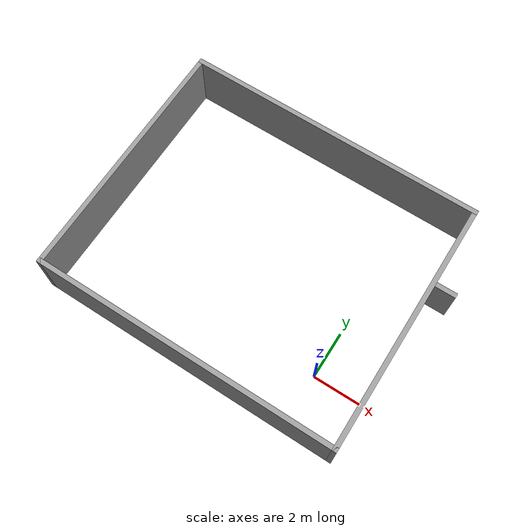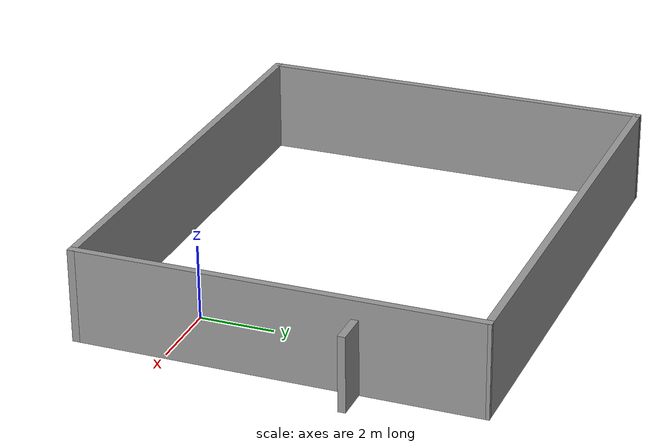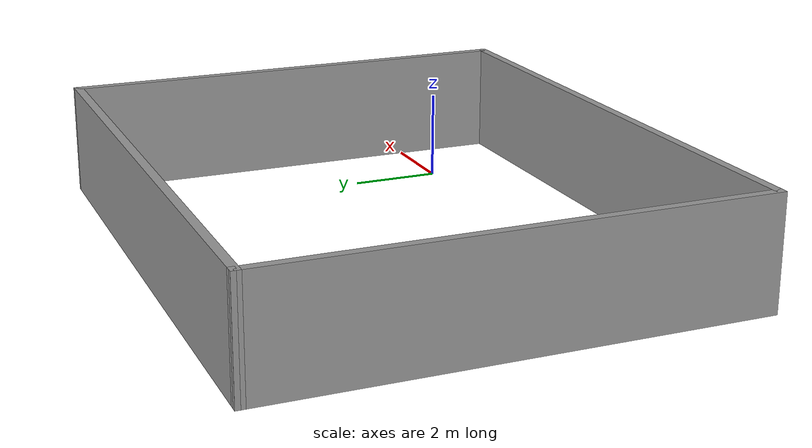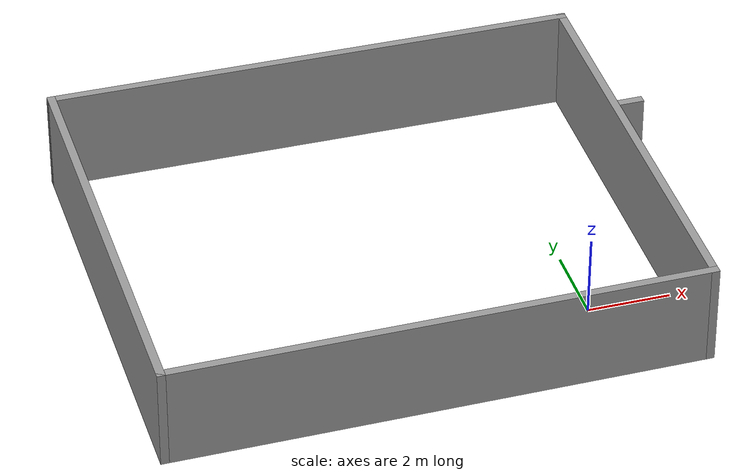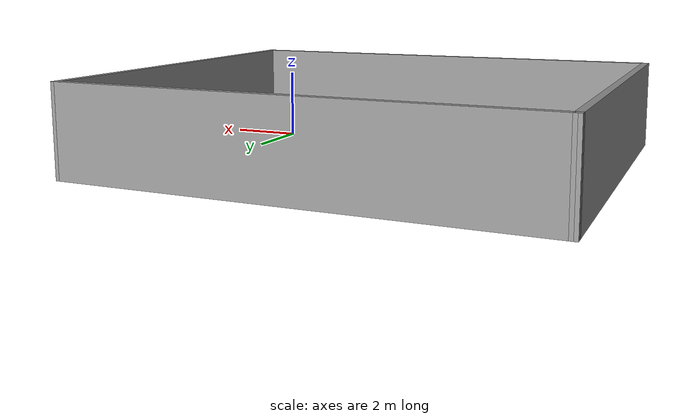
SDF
<?xml version='1.0'?>
<sdf version='1.4'>
  <model name='BuildingDefaultName'>
    <link name='Door_1'>
      <collision name='Door_1_Collision'>
        <geometry>
          <box>
            <size>1 0.2 2</size>
          </box>
        </geometry>
        <pose>0 0 1 0 -0 0</pose>
      </collision>
      <visual name='Door_1_Visual'>
        <pose>0 0 1 0 -0 0</pose>
        <geometry>
          <box>
            <size>1 0.2 2</size>
          </box>
        </geometry>
        <material>
          <script>
            <uri>file://media/materials/scripts/gazebo.material</uri>
            <name>Gazebo/Grey</name>
          </script>
        </material>
      </visual>
      <velocity_decay>
        <linear>0</linear>
        <angular>0</angular>
      </velocity_decay>
      <pose>2.5544 4.99374 0 0 -0 0</pose>
    </link>
    <link name='Wall_5'>
      <collision name='Wall_5_Collision'>
        <geometry>
          <box>
            <size>10.7536 0.2 2.5</size>
          </box>
        </geometry>
        <pose>0 0 1.25 0 -0 0</pose>
      </collision>
      <visual name='Wall_5_Visual'>
        <pose>0 0 1.25 0 -0 0</pose>
        <geometry>
          <box>
            <size>10.7536 0.2 2.5</size>
          </box>
        </geometry>
        <material>
          <script>
            <uri>file://media/materials/scripts/gazebo.material</uri>
            <name>Gazebo/Grey</name>
          </script>
        </material>
      </visual>
      <velocity_decay>
        <linear>0</linear>
        <angular>0</angular>
      </velocity_decay>
      <pose>2.0849 2.93538 0 0 0 -1.5708</pose>
    </link>
    <link name='Wall_6'>
      <collision name='Wall_6_Collision'>
        <geometry>
          <box>
            <size>12.9754 0.2 2.5</size>
          </box>
        </geometry>
        <pose>0 0 1.25 0 -0 0</pose>
      </collision>
      <visual name='Wall_6_Visual'>
        <pose>0 0 1.25 0 -0 0</pose>
        <geometry>
          <box>
            <size>12.9754 0.2 2.5</size>
          </box>
        </geometry>
        <material>
          <script>
            <uri>file://media/materials/scripts/gazebo.material</uri>
            <name>Gazebo/Grey</name>
          </script>
        </material>
      </visual>
      <velocity_decay>
        <linear>0</linear>
        <angular>0</angular>
      </velocity_decay>
      <pose>-4.30277 -2.3414 0 0 -0 3.14159</pose>
    </link>
    <link name='Wall_7'>
      <collision name='Wall_7_Collision'>
        <geometry>
          <box>
            <size>10.8726 0.2 2.5</size>
          </box>
        </geometry>
        <pose>0 0 1.25 0 -0 0</pose>
      </collision>
      <visual name='Wall_7_Visual'>
        <pose>0 0 1.25 0 -0 0</pose>
        <geometry>
          <box>
            <size>10.8726 0.2 2.5</size>
          </box>
        </geometry>
        <material>
          <script>
            <uri>file://media/materials/scripts/gazebo.material</uri>
            <name>Gazebo/Grey</name>
          </script>
        </material>
      </visual>
      <velocity_decay>
        <linear>0</linear>
        <angular>0</angular>
      </velocity_decay>
      <pose>-10.6905 2.99489 0 0 -0 1.5708</pose>
    </link>
    <link name='Wall_8'>
      <collision name='Wall_8_Collision'>
        <geometry>
          <box>
            <size>12.9759 0.2 2.5</size>
          </box>
        </geometry>
        <pose>0 0 1.25 0 -0 0</pose>
      </collision>
      <visual name='Wall_8_Visual'>
        <pose>0 0 1.25 0 -0 0</pose>
        <geometry>
          <box>
            <size>12.9759 0.2 2.5</size>
          </box>
        </geometry>
        <material>
          <script>
            <uri>file://media/materials/scripts/gazebo.material</uri>
            <name>Gazebo/Grey</name>
          </script>
        </material>
      </visual>
      <velocity_decay>
        <linear>0</linear>
        <angular>0</angular>
      </velocity_decay>
      <pose>-4.30277 8.27166 0 0 0 -0.009317</pose>
    </link>
    <static>1</static>
  </model>
</sdf>
